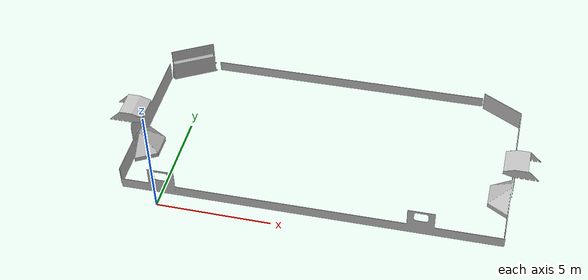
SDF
<?xml version="1.0" encoding="utf-8"?>
<sdf version="1.5">
  <model name="2024Field">
    <pose>0 0 -0.00253999999996003 0 0 0</pose>

    <link name="All">
      <gravity>1</gravity>
      <self_collide>0</self_collide>
      <pose>5.77915318833677 4.30587362627766 0.720184356698114 1.5707963267949 -3.49148133884313E-15 -8.32563198069109E-16</pose>
      <must_be_base_link>1</must_be_base_link>
      <velocity_decay>
        <linear>0</linear>
        <angular>0</angular>
      </velocity_decay>
      <inertial>
        <mass>1219.2760487767</mass>
        <pose>0 0 0 0 0 0</pose>
        <inertia>
          <ixx>9951.06373369103</ixx>
          <ixy>90.5992550618363</ixy>
          <ixz>123.721688791469</ixz>
          <iyy>76831.8832935283</iyy>
          <iyz>1.0793748079183</iyz>
          <izz>67701.0156962794</izz>
        </inertia>
      </inertial>
      <collision name="All_collision">
        <pose>-0.266908688318648 -0.724959556702069 -0.233154470076569 0 0 0</pose>
        <geometry>
          <mesh>
            <scale>1 1 1</scale>
            <uri>model://2024Field/meshes/All_col.STL</uri>
          </mesh>
        </geometry>
        <surface>
          <contact>
            <ode />
          </contact>
          <friction>
            <ode>
              <mu>0</mu>
              <mu2>0</mu2>
            </ode>
          </friction>
        </surface>
      </collision>
      <visual name="All_visual">
        <pose>-0.266908688318648 -0.724959556702069 -0.233154470076569 0 0 0</pose>
        <material>
          <ambient>0.752941176470588 0.752941176470588 0.752941176470588 1</ambient>
          <diffuse>0.752941176470588 0.752941176470588 0.752941176470588 1</diffuse>
        </material>
        <geometry>
          <mesh>
            <scale>1 1 1</scale>
            <uri>model://2024Field/meshes/All.STL</uri>
          </mesh>
        </geometry>
      </visual>
    </link>
     <joint name="field-World" type="fixed">
      <parent>world</parent>
      <child>All</child>
   </joint>
  </model>
</sdf>
